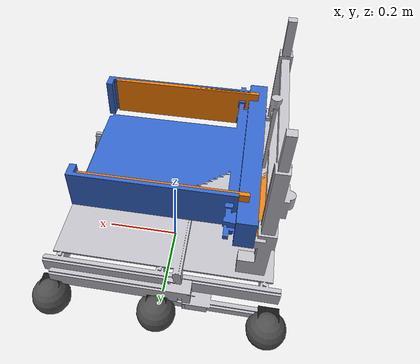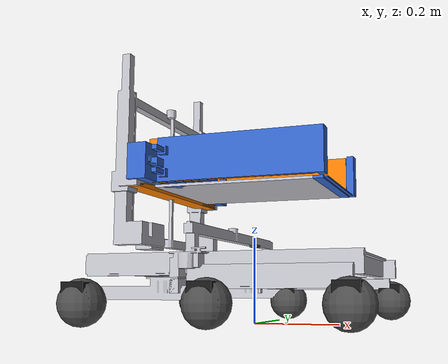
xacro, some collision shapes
<?xml version="1.0"?>
<robot xmlns:xacro="http://www.ros.org/wiki/xacro" name="r2_robot">

  <!-- R2 Robot - ABU Robocon 2026 "Kung Fu Quest"                  -->
  <!-- Rocker-Bogie Mecanum Chassis + Lift + Gripper                -->

  <!-- Constants (meters) -->
  <xacro:property name="wheel_dia"      value="0.1012"/>
  <xacro:property name="wheel_radius"   value="${wheel_dia/2}"/>
  <xacro:property name="wheel_width"    value="0.050"/>
  <xacro:property name="wheel_mass"     value="0.8"/>

  <xacro:property name="body_l"         value="0.600"/>
  <xacro:property name="body_w"         value="0.500"/>
  <xacro:property name="body_h"         value="0.040"/>
  <xacro:property name="body_mass"      value="8.0"/>

  <xacro:property name="body_half_w"    value="0.250"/>
  <xacro:property name="wheel_y_offset" value="0.290"/>

  <xacro:property name="front_wheel_x"  value="0.280"/>
  <xacro:property name="mid_wheel_x"    value="0.000"/>
  <xacro:property name="rear_wheel_x"   value="-0.280"/>

  <xacro:property name="rocker_pivot_x" value="-0.050"/>
  <xacro:property name="rocker_pivot_z" value="0.080"/>
  <xacro:property name="chassis_z"      value="0.1306"/>

  <xacro:property name="bogie_joint_x"  value="-0.100"/>

  <xacro:property name="rocker_mass"    value="1.5"/>
  <xacro:property name="bogie_mass"     value="1.0"/>

  <xacro:property name="lift_base_x"    value="-0.240"/>
  <xacro:property name="lift_base_z"    value="0.045"/>
  <xacro:property name="lift_height"    value="0.350"/>
  <xacro:property name="lift_mass"      value="3.0"/>
  <xacro:property name="lift_max"       value="0.650"/>

  <xacro:property name="gripper_mass"   value="2.0"/>
  <xacro:property name="jaw_max_open"   value="0.210"/>

  <!-- Materials -->
  <material name="aluminum">
    <color rgba="0.75 0.75 0.78 1.0"/>
  </material>
  <material name="dark_gray">
    <color rgba="0.3 0.3 0.3 1.0"/>
  </material>
  <material name="black">
    <color rgba="0.08 0.08 0.08 1.0"/>
  </material>
  <material name="orange">
    <color rgba="1.0 0.5 0.0 1.0"/>
  </material>
  <material name="blue">
    <color rgba="0.2 0.4 0.8 1.0"/>
  </material>

  <!-- Macros                                                        -->

  <!-- Box inertia -->
  <xacro:macro name="box_inertia" params="m x y z">
    <inertial>
      <mass value="${m}"/>
      <inertia ixx="${m*(y*y+z*z)/12}" ixy="0" ixz="0"
               iyy="${m*(x*x+z*z)/12}" iyz="0"
               izz="${m*(x*x+y*y)/12}"/>
    </inertial>
  </xacro:macro>

  <!-- Cylinder inertia (along Y axis for wheels) -->
  <xacro:macro name="cylinder_inertia_y" params="m r l">
    <inertial>
      <mass value="${m}"/>
      <inertia ixx="${m*(3*r*r+l*l)/12}" ixy="0" ixz="0"
               iyy="${m*r*r/2}" iyz="0"
               izz="${m*(3*r*r+l*l)/12}"/>
    </inertial>
  </xacro:macro>

  <!-- Mecanum wheel macro (bracket + motor mount + wheel) -->
  <!-- fdir1_x/fdir1_y: friction direction for mecanum roller simulation -->
  <xacro:macro name="mecanum_wheel" params="name parent x y mesh_file bracket_side fdir1_x fdir1_y">

    <!-- Bracket + motor mount (fixed to parent arm, does NOT rotate with wheel) -->
    <link name="${name}_mount">
      <visual>
        <geometry>
          <mesh filename="file://$(find r2_sim)/meshes/wheel_bracket_${bracket_side}.stl" scale="0.001 0.001 0.001"/>
        </geometry>
        <material name="black"/>
      </visual>
      <collision>
        <origin xyz="0 ${-y/2} 0" rpy="${pi/2} 0 0"/>
        <geometry>
          <cylinder radius="0.038" length="${(y*y)**0.5}"/>
        </geometry>
      </collision>
      <inertial>
        <mass value="0.5"/>
        <inertia ixx="2e-4" ixy="0" ixz="0" iyy="2e-4" iyz="0" izz="2e-4"/>
      </inertial>
    </link>

    <joint name="${name}_mount_joint" type="fixed">
      <parent link="${parent}"/>
      <child link="${name}_mount"/>
      <origin xyz="${x} ${y} 0" rpy="0 0 0"/>
    </joint>

    <!-- Wheel (rotates inside bracket) — sphere collision for mecanum friction -->
    <link name="${name}">
      <visual>
        <geometry>
          <mesh filename="file://$(find r2_sim)/meshes/${mesh_file}" scale="0.001 0.001 0.001"/>
        </geometry>
        <material name="dark_gray"/>
      </visual>
      <collision>
        <geometry>
          <sphere radius="${wheel_radius}"/>
        </geometry>
      </collision>
      <xacro:cylinder_inertia_y m="${wheel_mass}" r="${wheel_radius}" l="${wheel_width}"/>
    </link>

    <joint name="${name}_joint" type="continuous">
      <parent link="${name}_mount"/>
      <child link="${name}"/>
      <origin xyz="0 0 0" rpy="0 0 0"/>
      <axis xyz="0 1 0"/>
      <dynamics damping="0.1" friction="0.05"/>
    </joint>
    <gazebo reference="${name}">
      <mu1>1.0</mu1>
      <mu2>0.0</mu2>
      <fdir1>${fdir1_x} ${fdir1_y} 0</fdir1>
      <kp>1e6</kp>
      <kd>100</kd>
      <minDepth>0.001</minDepth>
    </gazebo>
    <gazebo reference="${name}_mount">
      <visual>
        <material>
          <ambient>0.08 0.08 0.08 1</ambient>
          <diffuse>0.08 0.08 0.08 1</diffuse>
        </material>
      </visual>
    </gazebo>
  </xacro:macro>

  <!-- Links and Joints                                              -->

  <!-- BASE LINK (on ground plane) -->
  <link name="base_link"/>

  <joint name="base_to_body" type="fixed">
    <parent link="base_link"/>
    <child link="body_frame"/>
    <origin xyz="0 0 ${chassis_z}" rpy="0 0 0"/>
  </joint>

  <!-- BODY FRAME -->
  <!-- body_frame world z = chassis_z; mesh is in assembly coords → offset visual by -chassis_z -->
  <link name="body_frame">
    <visual>
      <origin xyz="0 0 ${-chassis_z}" rpy="0 0 0"/>
      <geometry>
        <mesh filename="file://$(find r2_sim)/meshes/body_frame.stl" scale="0.001 0.001 0.001"/>
      </geometry>
      <material name="aluminum"/>
    </visual>
    <collision>
      <origin xyz="0 0 ${body_h/2}" rpy="0 0 0"/>
      <geometry>
        <box size="${body_l} ${body_w} ${body_h}"/>
      </geometry>
    </collision>
    <xacro:box_inertia m="${body_mass}" x="${body_l}" y="${body_w}" z="${body_h}"/>
  </link>

  <!-- ==================== LEFT SIDE ==================== -->

  <!-- ROCKER LEFT -->
  <!-- rocker_left world pos = (rocker_pivot_x, -body_half_w, chassis_z - rocker_pivot_z) -->
  <link name="rocker_left">
    <visual>
      <origin xyz="${-rocker_pivot_x} ${body_half_w} ${-(chassis_z - rocker_pivot_z)}" rpy="0 0 0"/>
      <geometry>
        <mesh filename="file://$(find r2_sim)/meshes/rocker_left.stl" scale="0.001 0.001 0.001"/>
      </geometry>
      <material name="aluminum"/>
    </visual>
    <collision>
      <origin xyz="0.1 0 0" rpy="0 0 0"/>
      <geometry>
        <box size="0.400 0.040 0.040"/>
      </geometry>
    </collision>
    <xacro:box_inertia m="${rocker_mass}" x="0.400" y="0.040" z="0.040"/>
  </link>

  <joint name="rocker_left_joint" type="revolute">
    <parent link="body_frame"/>
    <child link="rocker_left"/>
    <origin xyz="${rocker_pivot_x} ${-body_half_w} ${-rocker_pivot_z}" rpy="0 0 0"/>
    <axis xyz="1 0 0"/>
    <limit lower="-0.10" upper="0.10" effort="100" velocity="1.0"/>
    <dynamics damping="50.0" friction="5.0"/>
  </joint>

  <!-- Front wheel left (on rocker) -->
  <xacro:mecanum_wheel name="wheel_front_left" parent="rocker_left"
    x="${front_wheel_x - rocker_pivot_x}" y="${-(wheel_y_offset - body_half_w)}" mesh_file="mecanum_wheel_left.STL" bracket_side="left"
    fdir1_x="1" fdir1_y="-1"/>

  <!-- BOGIE LEFT (on rocker) -->
  <!-- bogie_left world pos = (bogie_joint_x, -body_half_w, chassis_z - rocker_pivot_z) -->
  <link name="bogie_left">
    <visual>
      <origin xyz="${-bogie_joint_x} ${body_half_w} ${-(chassis_z - rocker_pivot_z)}" rpy="0 0 0"/>
      <geometry>
        <mesh filename="file://$(find r2_sim)/meshes/bogie_left.stl" scale="0.001 0.001 0.001"/>
      </geometry>
      <material name="aluminum"/>
    </visual>
    <collision>
      <origin xyz="0 0 0" rpy="0 0 0"/>
      <geometry>
        <box size="0.300 0.030 0.030"/>
      </geometry>
    </collision>
    <xacro:box_inertia m="${bogie_mass}" x="0.300" y="0.030" z="0.030"/>
  </link>

  <joint name="bogie_left_joint" type="revolute">
    <parent link="rocker_left"/>
    <child link="bogie_left"/>
    <origin xyz="${bogie_joint_x - rocker_pivot_x} 0 0" rpy="0 0 0"/>
    <axis xyz="1 0 0"/>
    <limit lower="-0.10" upper="0.10" effort="100" velocity="1.0"/>
    <dynamics damping="50.0" friction="5.0"/>
  </joint>

  <!-- Mid wheel left (on bogie) -->
  <xacro:mecanum_wheel name="wheel_mid_left" parent="bogie_left"
    x="${mid_wheel_x - bogie_joint_x}" y="${-(wheel_y_offset - body_half_w)}" mesh_file="mecanum_wheel_left.STL" bracket_side="left"
    fdir1_x="1" fdir1_y="-1"/>

  <!-- Rear wheel left (on bogie) -->
  <xacro:mecanum_wheel name="wheel_rear_left" parent="bogie_left"
    x="${rear_wheel_x - bogie_joint_x}" y="${-(wheel_y_offset - body_half_w)}" mesh_file="mecanum_wheel_left.STL" bracket_side="left"
    fdir1_x="1" fdir1_y="1"/>

  <!-- ==================== RIGHT SIDE ==================== -->

  <!-- ROCKER RIGHT -->
  <!-- rocker_right world pos = (rocker_pivot_x, body_half_w, chassis_z - rocker_pivot_z) -->
  <link name="rocker_right">
    <visual>
      <origin xyz="${-rocker_pivot_x} ${-body_half_w} ${-(chassis_z - rocker_pivot_z)}" rpy="0 0 0"/>
      <geometry>
        <mesh filename="file://$(find r2_sim)/meshes/rocker_right.stl" scale="0.001 0.001 0.001"/>
      </geometry>
      <material name="aluminum"/>
    </visual>
    <collision>
      <origin xyz="0.1 0 0" rpy="0 0 0"/>
      <geometry>
        <box size="0.400 0.040 0.040"/>
      </geometry>
    </collision>
    <xacro:box_inertia m="${rocker_mass}" x="0.400" y="0.040" z="0.040"/>
  </link>

  <joint name="rocker_right_joint" type="revolute">
    <parent link="body_frame"/>
    <child link="rocker_right"/>
    <origin xyz="${rocker_pivot_x} ${body_half_w} ${-rocker_pivot_z}" rpy="0 0 0"/>
    <axis xyz="1 0 0"/>
    <limit lower="-0.35" upper="0.35" effort="50" velocity="1.0"/>
    <dynamics damping="50.0" friction="5.0"/>
  </joint>

  <!-- Front wheel right (on rocker) -->
  <xacro:mecanum_wheel name="wheel_front_right" parent="rocker_right"
    x="${front_wheel_x - rocker_pivot_x}" y="${wheel_y_offset - body_half_w}" mesh_file="mecanum_wheel_right.STL" bracket_side="right"
    fdir1_x="1" fdir1_y="1"/>

  <!-- BOGIE RIGHT (on rocker) -->
  <!-- bogie_right world pos = (bogie_joint_x, body_half_w, chassis_z - rocker_pivot_z) -->
  <link name="bogie_right">
    <visual>
      <origin xyz="${-bogie_joint_x} ${-body_half_w} ${-(chassis_z - rocker_pivot_z)}" rpy="0 0 0"/>
      <geometry>
        <mesh filename="file://$(find r2_sim)/meshes/bogie_right.stl" scale="0.001 0.001 0.001"/>
      </geometry>
      <material name="aluminum"/>
    </visual>
    <collision>
      <origin xyz="0 0 0" rpy="0 0 0"/>
      <geometry>
        <box size="0.300 0.030 0.030"/>
      </geometry>
    </collision>
    <xacro:box_inertia m="${bogie_mass}" x="0.300" y="0.030" z="0.030"/>
  </link>

  <joint name="bogie_right_joint" type="revolute">
    <parent link="rocker_right"/>
    <child link="bogie_right"/>
    <origin xyz="${bogie_joint_x - rocker_pivot_x} 0 0" rpy="0 0 0"/>
    <axis xyz="1 0 0"/>
    <limit lower="-0.35" upper="0.35" effort="50" velocity="1.0"/>
    <dynamics damping="50.0" friction="5.0"/>
  </joint>

  <!-- Mid wheel right (on bogie) -->
  <xacro:mecanum_wheel name="wheel_mid_right" parent="bogie_right"
    x="${mid_wheel_x - bogie_joint_x}" y="${wheel_y_offset - body_half_w}" mesh_file="mecanum_wheel_right.STL" bracket_side="right"
    fdir1_x="1" fdir1_y="1"/>

  <!-- Rear wheel right (on bogie) -->
  <xacro:mecanum_wheel name="wheel_rear_right" parent="bogie_right"
    x="${rear_wheel_x - bogie_joint_x}" y="${wheel_y_offset - body_half_w}" mesh_file="mecanum_wheel_right.STL" bracket_side="right"
    fdir1_x="1" fdir1_y="-1"/>

  <!-- ==================== LIFT ==================== -->

  <!-- lift_base world pos = (lift_base_x, 0, chassis_z + lift_base_z) -->
  <link name="lift_base">
    <visual>
      <origin xyz="${-lift_base_x} 0 ${-(chassis_z + lift_base_z)}" rpy="0 0 0"/>
      <geometry>
        <mesh filename="file://$(find r2_sim)/meshes/lift_base.stl" scale="0.001 0.001 0.001"/>
      </geometry>
      <material name="aluminum"/>
    </visual>
    <collision>
      <origin xyz="0 0 ${lift_height/2}" rpy="0 0 0"/>
      <geometry>
        <box size="0.060 0.460 ${lift_height}"/>
      </geometry>
    </collision>
    <xacro:box_inertia m="${lift_mass}" x="0.060" y="0.460" z="${lift_height}"/>
  </link>

  <joint name="lift_base_joint" type="fixed">
    <parent link="body_frame"/>
    <child link="lift_base"/>
    <origin xyz="${lift_base_x} 0 ${lift_base_z}" rpy="0 0 0"/>
  </joint>

  <!-- Lift carriage (moves up/down) -->
  <link name="lift_carriage">
    <visual>
      <origin xyz="0.025 0 0" rpy="0 0 0"/>
      <geometry>
        <box size="0.045 0.430 0.025"/>
      </geometry>
      <material name="orange"/>
    </visual>
    <collision>
      <origin xyz="0.025 0 0" rpy="0 0 0"/>
      <geometry>
        <box size="0.045 0.430 0.025"/>
      </geometry>
    </collision>
    <xacro:box_inertia m="0.8" x="0.045" y="0.430" z="0.025"/>
  </link>

  <joint name="lift_joint" type="prismatic">
    <parent link="lift_base"/>
    <child link="lift_carriage"/>
    <origin xyz="0 0 ${lift_height*0.4}" rpy="0 0 0"/>
    <axis xyz="0 0 1"/>
    <limit lower="0" upper="${lift_max}" effort="100" velocity="0.3"/>
    <dynamics damping="10.0" friction="2.0"/>
  </joint>

  <!-- ==================== GRIPPER ==================== -->

  <link name="gripper_base">
    <visual>
      <geometry>
        <mesh filename="file://$(find r2_sim)/meshes/gripper_base.stl" scale="0.001 0.001 0.001"/>
      </geometry>
      <material name="blue"/>
    </visual>
    <collision>
      <origin xyz="0.025 0 0.040" rpy="0 0 0"/>
      <geometry>
        <box size="0.045 0.480 0.080"/>
      </geometry>
    </collision>
    <xacro:box_inertia m="${gripper_mass}" x="0.045" y="0.480" z="0.080"/>
  </link>

  <joint name="gripper_base_joint" type="fixed">
    <parent link="lift_carriage"/>
    <child link="gripper_base"/>
    <origin xyz="0.050 0 0" rpy="0 0 0"/>
  </joint>

  <!-- Left jaw -->
  <link name="jaw_left">
    <visual>
      <origin xyz="0.190 0 0.050" rpy="0 0 0"/>
      <geometry>
        <box size="0.380 0.010 0.100"/>
      </geometry>
      <material name="orange"/>
    </visual>
    <collision>
      <origin xyz="0.190 0 0.050" rpy="0 0 0"/>
      <geometry>
        <box size="0.380 0.010 0.100"/>
      </geometry>
    </collision>
    <xacro:box_inertia m="0.5" x="0.380" y="0.010" z="0.100"/>
  </link>

  <joint name="jaw_left_joint" type="prismatic">
    <parent link="gripper_base"/>
    <child link="jaw_left"/>
    <origin xyz="0 ${-0.176} 0" rpy="0 0 0"/>
    <axis xyz="0 1 0"/>
    <limit lower="-0.035" upper="0" effort="50" velocity="0.2"/>
    <dynamics damping="5.0" friction="1.0"/>
  </joint>

  <!-- Right jaw -->
  <link name="jaw_right">
    <visual>
      <origin xyz="0.190 0 0.050" rpy="0 0 0"/>
      <geometry>
        <box size="0.380 0.010 0.100"/>
      </geometry>
      <material name="orange"/>
    </visual>
    <collision>
      <origin xyz="0.190 0 0.050" rpy="0 0 0"/>
      <geometry>
        <box size="0.380 0.010 0.100"/>
      </geometry>
    </collision>
    <xacro:box_inertia m="0.5" x="0.380" y="0.010" z="0.100"/>
  </link>

  <joint name="jaw_right_joint" type="prismatic">
    <parent link="gripper_base"/>
    <child link="jaw_right"/>
    <origin xyz="0 ${0.176} 0" rpy="0 0 0"/>
    <axis xyz="0 1 0"/>
    <limit lower="0" upper="0.035" effort="50" velocity="0.2"/>
    <dynamics damping="5.0" friction="1.0"/>
  </joint>

  <!-- Bottom scoop -->
  <link name="scoop">
    <visual>
      <origin xyz="0.185 0 -0.003" rpy="0 0 0"/>
      <geometry>
        <box size="0.370 0.300 0.006"/>
      </geometry>
      <material name="aluminum"/>
    </visual>
    <collision>
      <origin xyz="0.185 0 -0.003" rpy="0 0 0"/>
      <geometry>
        <box size="0.370 0.300 0.006"/>
      </geometry>
    </collision>
    <xacro:box_inertia m="0.3" x="0.370" y="0.300" z="0.006"/>
  </link>

  <joint name="scoop_joint" type="fixed">
    <parent link="gripper_base"/>
    <child link="scoop"/>
    <origin xyz="0 0 0" rpy="0 0 0"/>
  </joint>

  <!-- Gazebo Plugins                                                -->

  <gazebo>
    <!-- Mecanum drive controller -->
    <plugin filename="gz-sim-mecanum-drive-system"
            name="gz::sim::systems::MecanumDrive">
      <front_left_joint>wheel_front_left_joint</front_left_joint>
      <front_right_joint>wheel_front_right_joint</front_right_joint>
      <back_left_joint>wheel_rear_left_joint</back_left_joint>
      <back_right_joint>wheel_rear_right_joint</back_right_joint>
      <wheel_separation>${wheel_y_offset * 2}</wheel_separation>
      <wheelbase>${front_wheel_x - rear_wheel_x}</wheelbase>
      <wheel_radius>${wheel_radius}</wheel_radius>
      <odom_publish_frequency>50</odom_publish_frequency>
      <topic>cmd_vel</topic>
      <odom_topic>odom</odom_topic>
      <tf_topic>tf</tf_topic>
      <frame_id>odom</frame_id>
      <child_frame_id>base_link</child_frame_id>
    </plugin>

    <!-- Joint state publisher -->
    <plugin filename="gz-sim-joint-state-publisher-system"
            name="gz::sim::systems::JointStatePublisher">
      <joint_name>rocker_left_joint</joint_name>
      <joint_name>rocker_right_joint</joint_name>
      <joint_name>bogie_left_joint</joint_name>
      <joint_name>bogie_right_joint</joint_name>
      <joint_name>wheel_front_left_joint</joint_name>
      <joint_name>wheel_front_right_joint</joint_name>
      <joint_name>wheel_mid_left_joint</joint_name>
      <joint_name>wheel_mid_right_joint</joint_name>
      <joint_name>wheel_rear_left_joint</joint_name>
      <joint_name>wheel_rear_right_joint</joint_name>
      <joint_name>lift_joint</joint_name>
      <joint_name>jaw_left_joint</joint_name>
      <joint_name>jaw_right_joint</joint_name>
      <topic>joint_states</topic>
    </plugin>

    <!-- Lift + gripper joint position controller -->
    <plugin filename="gz-sim-joint-position-controller-system"
            name="gz::sim::systems::JointPositionController">
      <joint_name>lift_joint</joint_name>
      <topic>lift_cmd</topic>
      <p_gain>500</p_gain>
      <i_gain>10</i_gain>
      <d_gain>50</d_gain>
    </plugin>

    <plugin filename="gz-sim-joint-position-controller-system"
            name="gz::sim::systems::JointPositionController">
      <joint_name>jaw_left_joint</joint_name>
      <topic>jaw_left_cmd</topic>
      <p_gain>200</p_gain>
      <i_gain>5</i_gain>
      <d_gain>20</d_gain>
    </plugin>

    <plugin filename="gz-sim-joint-position-controller-system"
            name="gz::sim::systems::JointPositionController">
      <joint_name>jaw_right_joint</joint_name>
      <topic>jaw_right_cmd</topic>
      <p_gain>200</p_gain>
      <i_gain>5</i_gain>
      <d_gain>20</d_gain>
    </plugin>

    <!-- IMU sensor -->
    <plugin filename="gz-sim-imu-system"
            name="gz::sim::systems::Imu"/>
  </gazebo>

  <!-- IMU link -->
  <link name="imu_link">
    <visual>
      <geometry>
        <box size="0.02 0.02 0.005"/>
      </geometry>
      <material name="dark_gray"/>
    </visual>
    <inertial>
      <mass value="0.01"/>
      <inertia ixx="1e-6" ixy="0" ixz="0" iyy="1e-6" iyz="0" izz="1e-6"/>
    </inertial>
  </link>

  <joint name="imu_joint" type="fixed">
    <parent link="body_frame"/>
    <child link="imu_link"/>
    <origin xyz="0 0 ${body_h + 0.01}" rpy="0 0 0"/>
  </joint>

  <gazebo reference="imu_link">
    <sensor name="imu_sensor" type="imu">
      <always_on>true</always_on>
      <update_rate>100</update_rate>
      <topic>imu</topic>
    </sensor>
  </gazebo>

  <!-- Suspension spring stiffness — holds rocker/bogie level -->
  <gazebo reference="rocker_left_joint">
    <implicitSpringDamper>true</implicitSpringDamper>
    <springStiffness>500</springStiffness>
    <springReference>0</springReference>
  </gazebo>
  <gazebo reference="rocker_right_joint">
    <implicitSpringDamper>true</implicitSpringDamper>
    <springStiffness>500</springStiffness>
    <springReference>0</springReference>
  </gazebo>
  <gazebo reference="bogie_left_joint">
    <implicitSpringDamper>true</implicitSpringDamper>
    <springStiffness>500</springStiffness>
    <springReference>0</springReference>
  </gazebo>
  <gazebo reference="bogie_right_joint">
    <implicitSpringDamper>true</implicitSpringDamper>
    <springStiffness>500</springStiffness>
    <springReference>0</springReference>
  </gazebo>

  <!-- Gazebo material colors -->
  <gazebo reference="body_frame">
    <visual>
      <material>
        <ambient>0.75 0.75 0.78 1</ambient>
        <diffuse>0.75 0.75 0.78 1</diffuse>
      </material>
    </visual>
  </gazebo>

  <gazebo reference="lift_base">
    <visual>
      <material>
        <ambient>0.75 0.75 0.78 1</ambient>
        <diffuse>0.75 0.75 0.78 1</diffuse>
      </material>
    </visual>
  </gazebo>

  <gazebo reference="gripper_base">
    <visual>
      <material>
        <ambient>0.2 0.4 0.8 1</ambient>
        <diffuse>0.2 0.4 0.8 1</diffuse>
      </material>
    </visual>
  </gazebo>

  <gazebo reference="lift_carriage">
    <visual>
      <material>
        <ambient>1.0 0.5 0.0 1</ambient>
        <diffuse>1.0 0.5 0.0 1</diffuse>
      </material>
    </visual>
  </gazebo>

</robot>
